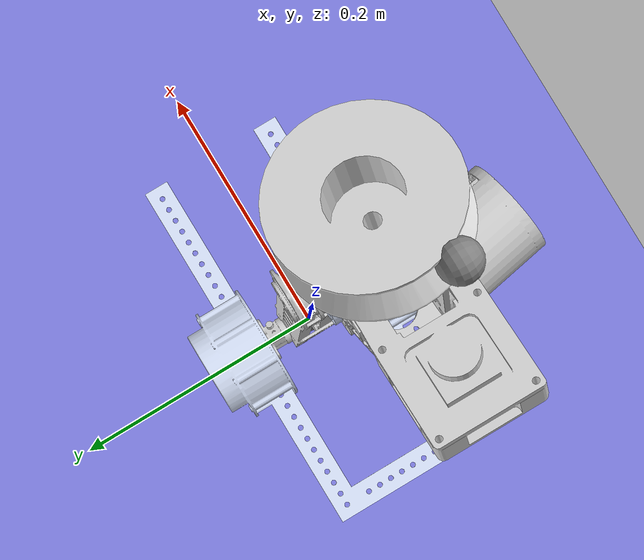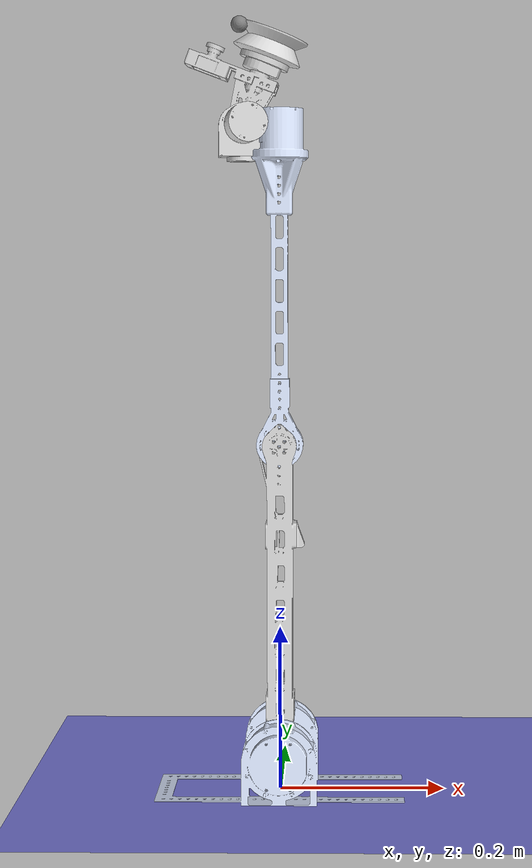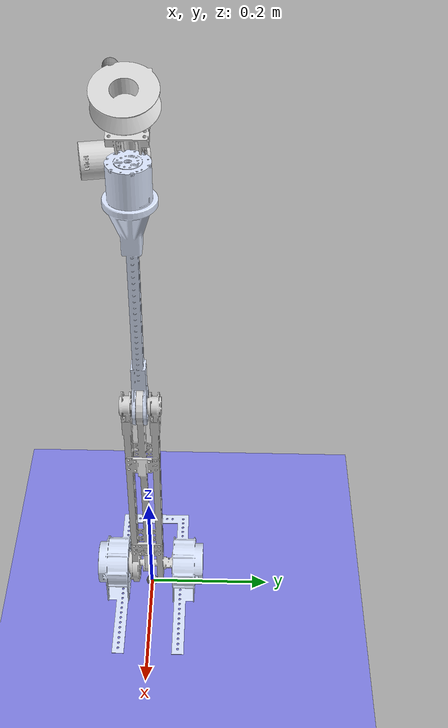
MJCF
<mujoco model="robotic_arm_torque_scene">
  <option gravity="0 0 -9.81" timestep="0.002"/>
  <include file="robotic_arm_torque.xml"/>

  <statistic center="0.25 0 0.2" extent="0.9"/>

  <visual>
    <headlight diffuse="0.2 0.2 0.2" ambient="0.35 0.35 0.35" specular="0.1 0.1 0.1"/>
    <rgba haze="0 0 0 0"/>
    <global offwidth="1920" offheight="1080"/>
  </visual>

  <default>
    <geom group="2" rgba="0.5 0.5 0.9 0.35"/>
  </default>

  <asset>
    <texture type="skybox" builtin="gradient" rgb1="0.35 0.55 0.75" rgb2="0.05 0.08 0.1" width="512" height="3072"/>
    <texture type="2d" name="groundplane" builtin="checker" mark="edge" rgb1="0.2 0.25 0.3" rgb2="0.12 0.16 0.2"
      markrgb="0.8 0.8 0.8" width="300" height="300"/>
    <material name="groundplane" texture="groundplane" texuniform="true" texrepeat="5 5" reflectance="0.2"/>
  </asset>

  <worldbody>
    <geom name="ground" type="plane" size="50 50 0.3" pos="0 0 0" material="groundplane" contype="0" conaffinity="0"/>
    <light name="main_light" pos="0 0 4" dir="0 0 -1" directional="true"/>
  </worldbody>
</mujoco>

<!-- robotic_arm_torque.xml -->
<mujoco model="robotic_arm">
  <compiler angle="radian" autolimits="true"/>
  <!-- implicitfast：MuJoCo 推荐的隐式积分器，对带 damping/接触的铰接臂数值更稳。 -->
  <option integrator="implicitfast"/>
  <asset>
    <mesh name="base_link" file="base_link.STL" />
    <mesh name="link1" file="link1.STL" />
    <mesh name="link2" file="link2.STL" />
    <mesh name="link3" file="link3.STL" />
    <mesh name="link4" file="link4.STL" />
  </asset>
  <worldbody>
    <body name="base_link">
      <inertial pos="-9.52016243616072e-15 -1.94289029309402e-16 0.0155191781345583" mass="0.446116144380579" fullinertia="0.000224798050494485 0.00138255058840876 0.00122839549734328 -2.18020596920716e-10 -7.25060202849681e-19 -2.37030607855116e-20" />
      <geom type="mesh" rgba="0.866666666666667 0.909803921568627 1 1" mesh="base_link" />
      <site name="tool_site" pos="0 0 0" size="0.01" />
      <!-- URDF joint1 origin rpy = 1.5708 -1.57 -3.1416 -->
      <body name="link1" pos="0 -0.04 0.05" quat="0.499799959274 -0.49980179807 -0.500198124855 -0.500199959263">
        <inertial pos="0.150031524729698 0.000191995103078102 0.0344853139404591" mass="0.43178795433662" fullinertia="5.96075244798525e-05 0.00272008694008324 0.00274655104559429 -4.07370544541132e-06 -1.02661773419375e-07 2.06377860208473e-08" />
        <joint name="joint1" pos="0 0 0" axis="0 0 1" range="-1.5708 1.5708" actuatorfrcrange="-50 50" />
        <geom type="mesh" rgba="0.847058823529412 0.847058823529412 0.847058823529412 1" mesh="link1" />
        <!-- URDF joint2 origin rpy = 1.5708 0.0 0.0 -->
        <body name="link2" pos="0.374 0 0.0401" quat="0.707105482511 0.707108079859 0 0">
          <inertial pos="0.205484012122796 -0.00549986783103082 0.0186225676272804" mass="0.334546886253206" fullinertia="9.93613919225459e-05 0.000582195736690295 0.000556148638754133 8.10971210408094e-10 -4.61050169328864e-09 5.70676865975426e-09" />
          <joint name="joint2" pos="0 0 0" axis="0 -1 0" range="-3.1 3.1" actuatorfrcrange="-50 50" />
          <geom type="mesh" rgba="0.866666666666667 0.909803921568627 1 1" mesh="link2" />
          <!-- URDF joint3 origin rpy = -1.5708 -1.5708 -1.5708 -->
          <body name="link3" pos="0.3384 -0.0055 0.045" quat="-0.000003896022 -0.707106781181 0.000001298674 -0.707106781181">
            <inertial pos="0.00045693106510647 0.0120159218838146 0.0326962826671975" mass="0.0818036914981158" fullinertia="2.58771620872542e-05 3.05802737829727e-05 2.3497726615304e-05 1.52000429986836e-07 1.71868944443329e-08 3.75710826679309e-07" />
            <joint name="joint3" pos="0 0 0" axis="0 0 1" range="-3.14 3.14" actuatorfrcrange="-50 50" />
            <geom type="mesh" rgba="0.847058823529412 0.847058823529412 0.847058823529412 1" mesh="link3" />
            <!-- URDF joint4 origin rpy = -1.5708 -1.5708 3.14 -->
            <body name="link4" pos="0.00079568 0.018983 0.043" quat="0.500399839961 0.499601678107 -0.500398004818 0.499599840046">
              <inertial pos="0.0717111929893778 -0.0115466248724582 0.0198054015294321" mass="0.269974503355347" fullinertia="0.000158676016051897 0.000126778289759083 0.000154960757569298 7.59760657382795e-08 5.56013658017894e-08 2.07997464437305e-09" />
              <joint name="joint4" pos="0 0 0" axis="0 0 1" range="-1.5708 1.5708" actuatorfrcrange="-50 50" />
              <geom type="mesh" rgba="0.847058823529412 0.847058823529412 0.847058823529412 1" mesh="link4" />
              <site name="ee_site" pos="0.1165 0 0" size="0.01" />
            </body>
          </body>
        </body>
      </body>
    </body>
  </worldbody>
  <contact>
    <exclude body1="base_link" body2="link1" />
    <exclude body1="link1" body2="link2" />
    <exclude body1="link2" body2="link3" />
    <exclude body1="link3" body2="link4" />

    <exclude body1="base_link" body2="link2" />
    <exclude body1="base_link" body2="link3" />
    <exclude body1="base_link" body2="link4" />
    <exclude body1="link1" body2="link3" />
    <exclude body1="link1" body2="link4" />
    <exclude body1="link2" body2="link4" />
  </contact>
  <actuator>
    <motor name="motor1" joint="joint1" gear="1" ctrllimited="true" ctrlrange="-50 50" />
    <motor name="motor2" joint="joint2" gear="1" ctrllimited="true" ctrlrange="-50 50" />
    <motor name="motor3" joint="joint3" gear="1" ctrllimited="true" ctrlrange="-50 50" />
    <motor name="motor4" joint="joint4" gear="1" ctrllimited="true" ctrlrange="-50 50" />
  </actuator>
  <sensor>
    <actuatorpos name="motor1_p" actuator="motor1" />
    <actuatorpos name="motor2_p" actuator="motor2" />
    <actuatorpos name="motor3_p" actuator="motor3" />
    <actuatorpos name="motor4_p" actuator="motor4" />
    <actuatorvel name="motor1_v" actuator="motor1" />
    <actuatorvel name="motor2_v" actuator="motor2" />
    <actuatorvel name="motor3_v" actuator="motor3" />
    <actuatorvel name="motor4_v" actuator="motor4" />
    <actuatorfrc name="motor1_f" actuator="motor1" noise="1e-3" />
    <actuatorfrc name="motor2_f" actuator="motor2" noise="1e-3" />
    <actuatorfrc name="motor3_f" actuator="motor3" noise="1e-3" />
    <actuatorfrc name="motor4_f" actuator="motor4" noise="1e-3" />
    <framepos name="ee_pos" objtype="site" objname="ee_site" />
    <framequat name="ee_quat" objtype="site" objname="ee_site" />
  </sensor>
</mujoco>
